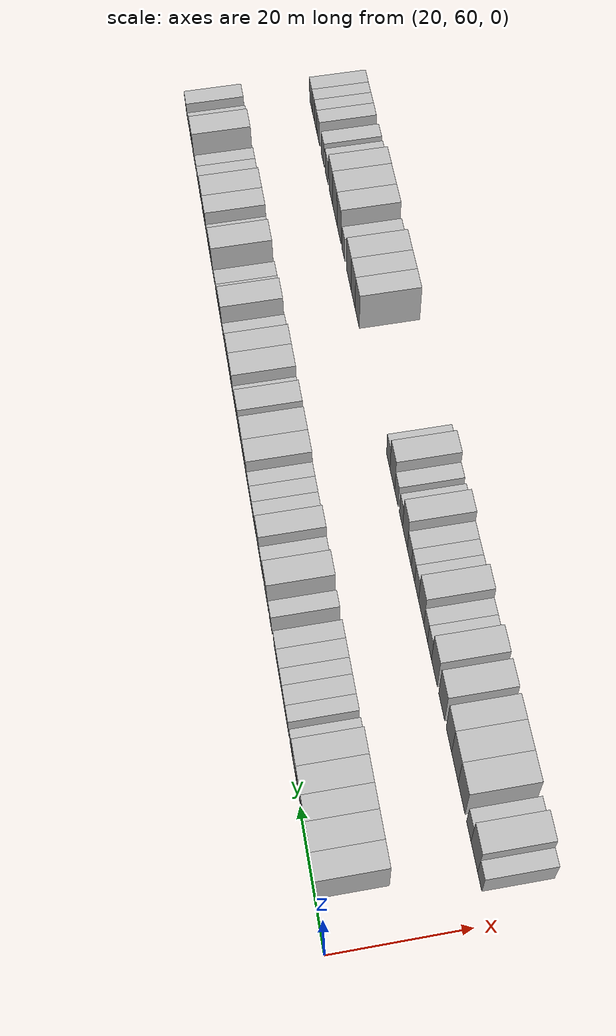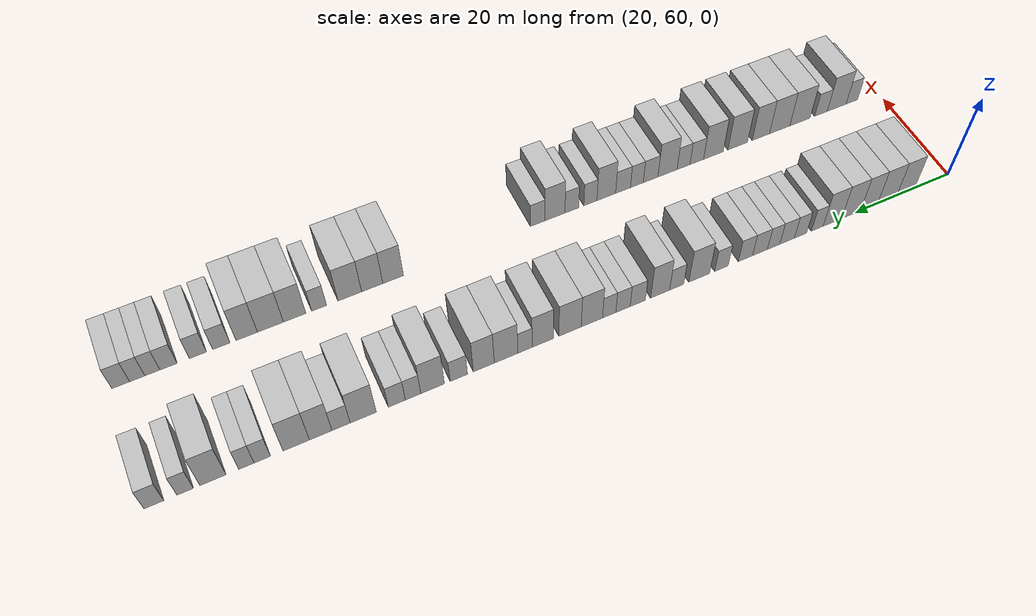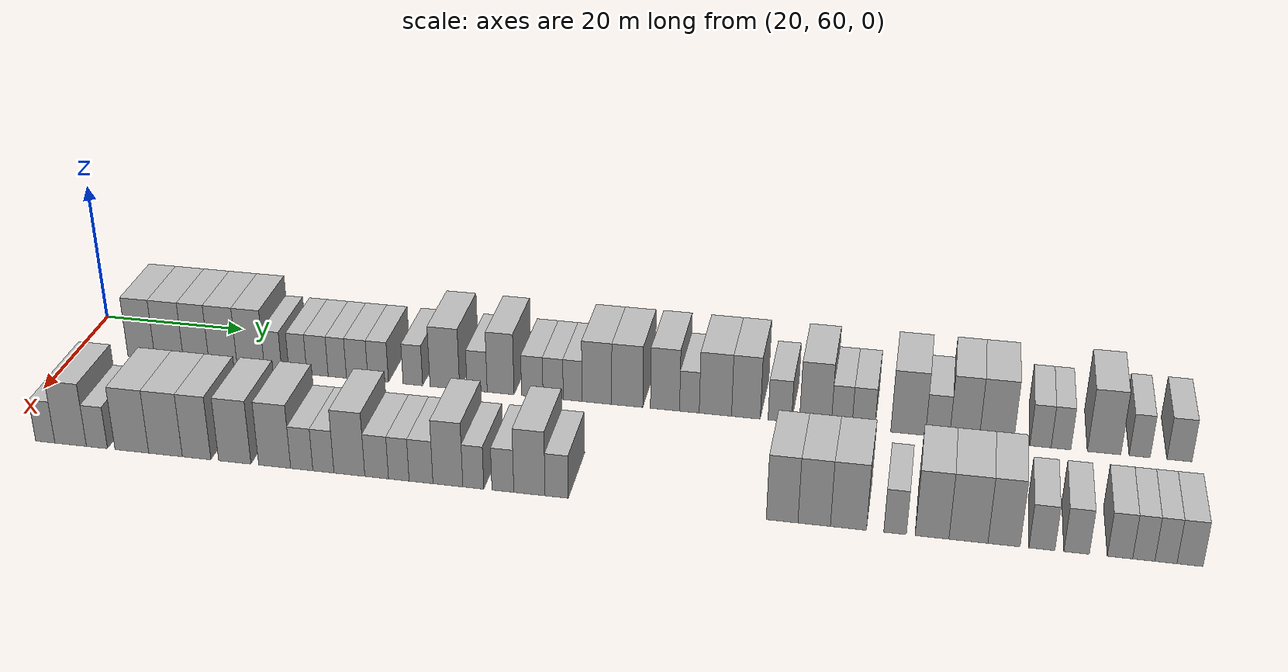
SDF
<sdf version="1.6">
 <world name="default">
  <model name="building_68">
   <static>1</static>
   <pose>25.0000 69.3000 0 0.000000 0.000000 0.000000</pose>
   <link name="link">
    <pose>0 0 4.50 0 0 0</pose>
    <collision name="collision"><geometry><box><size>10.0000 3.8514 9.0000</size></box></geometry></collision>
    <visual name="visual">
     <cast_shadows>0</cast_shadows>
     <geometry><box><size>10.0000 3.8514 9.0000</size></box></geometry>
     <material>
      <script>
       <uri>model://HANNAS_wall/materials/scripts</uri>
       <uri>model://HANNAS_wall/materials/textures</uri>
       <name>vrc/HANNAS_wall</name>
      </script>
     </material>
    </visual>
   </link>
  </model>
  <model name="building_69">
   <static>1</static>
   <pose>25.0000 73.2681 0 0.000000 0.000000 0.000000</pose>
   <link name="link">
    <pose>0 0 4.50 0 0 0</pose>
    <collision name="collision"><geometry><box><size>10.0000 4.0848 9.0000</size></box></geometry></collision>
    <visual name="visual">
     <cast_shadows>0</cast_shadows>
     <geometry><box><size>10.0000 4.0848 9.0000</size></box></geometry>
     <material>
      <script>
       <uri>model://HANNAS_wall/materials/scripts</uri>
       <uri>model://HANNAS_wall/materials/textures</uri>
       <name>vrc/HANNAS_wall</name>
      </script>
     </material>
    </visual>
   </link>
  </model>
  <model name="building_70">
   <static>1</static>
   <pose>25.0000 77.1204 0 0.000000 0.000000 0.000000</pose>
   <link name="link">
    <pose>0 0 4.50 0 0 0</pose>
    <collision name="collision"><geometry><box><size>10.0000 3.6198 9.0000</size></box></geometry></collision>
    <visual name="visual">
     <cast_shadows>0</cast_shadows>
     <geometry><box><size>10.0000 3.6198 9.0000</size></box></geometry>
     <material>
      <script>
       <uri>model://HANNAS_wall/materials/scripts</uri>
       <uri>model://HANNAS_wall/materials/textures</uri>
       <name>vrc/HANNAS_wall</name>
      </script>
     </material>
    </visual>
   </link>
  </model>
  <model name="building_71">
   <static>1</static>
   <pose>25.0000 80.9103 0 0.000000 0.000000 0.000000</pose>
   <link name="link">
    <pose>0 0 4.50 0 0 0</pose>
    <collision name="collision"><geometry><box><size>10.0000 3.9601 9.0000</size></box></geometry></collision>
    <visual name="visual">
     <cast_shadows>0</cast_shadows>
     <geometry><box><size>10.0000 3.9601 9.0000</size></box></geometry>
     <material>
      <script>
       <uri>model://HANNAS_wall/materials/scripts</uri>
       <uri>model://HANNAS_wall/materials/textures</uri>
       <name>vrc/HANNAS_wall</name>
      </script>
     </material>
    </visual>
   </link>
  </model>
  <model name="building_72">
   <static>1</static>
   <pose>25.0000 84.8086 0 0.000000 0.000000 0.000000</pose>
   <link name="link">
    <pose>0 0 4.50 0 0 0</pose>
    <collision name="collision"><geometry><box><size>10.0000 3.8365 9.0000</size></box></geometry></collision>
    <visual name="visual">
     <cast_shadows>0</cast_shadows>
     <geometry><box><size>10.0000 3.8365 9.0000</size></box></geometry>
     <material>
      <script>
       <uri>model://HANNAS_wall/materials/scripts</uri>
       <uri>model://HANNAS_wall/materials/textures</uri>
       <name>vrc/HANNAS_wall</name>
      </script>
     </material>
    </visual>
   </link>
  </model>
  <model name="building_73">
   <static>1</static>
   <pose>25.0000 87.9325 0 0.000000 0.000000 0.000000</pose>
   <link name="link">
    <pose>0 0 3.00 0 0 0</pose>
    <collision name="collision"><geometry><box><size>10.0000 2.4113 6.0000</size></box></geometry></collision>
    <visual name="visual">
     <cast_shadows>0</cast_shadows>
     <geometry><box><size>10.0000 2.4113 6.0000</size></box></geometry>
     <material>
      <script>
       <uri>model://HANNAS_wall/materials/scripts</uri>
       <uri>model://HANNAS_wall/materials/textures</uri>
       <name>vrc/HANNAS_wall</name>
      </script>
     </material>
    </visual>
   </link>
  </model>
  <model name="building_74">
   <static>1</static>
   <pose>25.0000 91.3737 0 0.000000 0.000000 0.000000</pose>
   <link name="link">
    <pose>0 0 3.00 0 0 0</pose>
    <collision name="collision"><geometry><box><size>10.0000 2.4710 6.0000</size></box></geometry></collision>
    <visual name="visual">
     <cast_shadows>0</cast_shadows>
     <geometry><box><size>10.0000 2.4710 6.0000</size></box></geometry>
     <material>
      <script>
       <uri>model://HANNAS_wall/materials/scripts</uri>
       <uri>model://HANNAS_wall/materials/textures</uri>
       <name>vrc/HANNAS_wall</name>
      </script>
     </material>
    </visual>
   </link>
  </model>
  <model name="building_75">
   <static>1</static>
   <pose>25.0000 94.0916 0 0.000000 0.000000 0.000000</pose>
   <link name="link">
    <pose>0 0 3.00 0 0 0</pose>
    <collision name="collision"><geometry><box><size>10.0000 2.9649 6.0000</size></box></geometry></collision>
    <visual name="visual">
     <cast_shadows>0</cast_shadows>
     <geometry><box><size>10.0000 2.9649 6.0000</size></box></geometry>
     <material>
      <script>
       <uri>model://HANNAS_wall/materials/scripts</uri>
       <uri>model://HANNAS_wall/materials/textures</uri>
       <name>vrc/HANNAS_wall</name>
      </script>
     </material>
    </visual>
   </link>
  </model>
  <model name="building_76">
   <static>1</static>
   <pose>25.0000 96.8340 0 0.000000 0.000000 0.000000</pose>
   <link name="link">
    <pose>0 0 3.00 0 0 0</pose>
    <collision name="collision"><geometry><box><size>10.0000 2.5198 6.0000</size></box></geometry></collision>
    <visual name="visual">
     <cast_shadows>0</cast_shadows>
     <geometry><box><size>10.0000 2.5198 6.0000</size></box></geometry>
     <material>
      <script>
       <uri>model://HANNAS_wall/materials/scripts</uri>
       <uri>model://HANNAS_wall/materials/textures</uri>
       <name>vrc/HANNAS_wall</name>
      </script>
     </material>
    </visual>
   </link>
  </model>
  <model name="building_77">
   <static>1</static>
   <pose>25.0000 99.5716 0 0.000000 0.000000 0.000000</pose>
   <link name="link">
    <pose>0 0 3.00 0 0 0</pose>
    <collision name="collision"><geometry><box><size>10.0000 2.9555 6.0000</size></box></geometry></collision>
    <visual name="visual">
     <cast_shadows>0</cast_shadows>
     <geometry><box><size>10.0000 2.9555 6.0000</size></box></geometry>
     <material>
      <script>
       <uri>model://HANNAS_wall/materials/scripts</uri>
       <uri>model://HANNAS_wall/materials/textures</uri>
       <name>vrc/HANNAS_wall</name>
      </script>
     </material>
    </visual>
   </link>
  </model>
  <model name="building_78">
   <static>1</static>
   <pose>25.0000 102.4579 0 0.000000 0.000000 0.000000</pose>
   <link name="link">
    <pose>0 0 3.00 0 0 0</pose>
    <collision name="collision"><geometry><box><size>10.0000 2.8170 6.0000</size></box></geometry></collision>
    <visual name="visual">
     <cast_shadows>0</cast_shadows>
     <geometry><box><size>10.0000 2.8170 6.0000</size></box></geometry>
     <material>
      <script>
       <uri>model://HANNAS_wall/materials/scripts</uri>
       <uri>model://HANNAS_wall/materials/textures</uri>
       <name>vrc/HANNAS_wall</name>
      </script>
     </material>
    </visual>
   </link>
  </model>
  <model name="building_79">
   <static>1</static>
   <pose>25.0000 107.1990 0 0.000000 0.000000 0.000000</pose>
   <link name="link">
    <pose>0 0 3.00 0 0 0</pose>
    <collision name="collision"><geometry><box><size>10.0000 2.6654 6.0000</size></box></geometry></collision>
    <visual name="visual">
     <cast_shadows>0</cast_shadows>
     <geometry><box><size>10.0000 2.6654 6.0000</size></box></geometry>
     <material>
      <script>
       <uri>model://HANNAS_wall/materials/scripts</uri>
       <uri>model://HANNAS_wall/materials/textures</uri>
       <name>vrc/HANNAS_wall</name>
      </script>
     </material>
    </visual>
   </link>
  </model>
  <model name="building_80">
   <static>1</static>
   <pose>25.0000 111.5384 0 0.000000 0.000000 0.000000</pose>
   <link name="link">
    <pose>0 0 4.50 0 0 0</pose>
    <collision name="collision"><geometry><box><size>10.0000 4.0134 9.0000</size></box></geometry></collision>
    <visual name="visual">
     <cast_shadows>0</cast_shadows>
     <geometry><box><size>10.0000 4.0134 9.0000</size></box></geometry>
     <material>
      <script>
       <uri>model://HANNAS_wall/materials/scripts</uri>
       <uri>model://HANNAS_wall/materials/textures</uri>
       <name>vrc/HANNAS_wall</name>
      </script>
     </material>
    </visual>
   </link>
  </model>
  <model name="building_81">
   <static>1</static>
   <pose>25.0000 115.9004 0 0.000000 0.000000 0.000000</pose>
   <link name="link">
    <pose>0 0 3.00 0 0 0</pose>
    <collision name="collision"><geometry><box><size>10.0000 2.7104 6.0000</size></box></geometry></collision>
    <visual name="visual">
     <cast_shadows>0</cast_shadows>
     <geometry><box><size>10.0000 2.7104 6.0000</size></box></geometry>
     <material>
      <script>
       <uri>model://HANNAS_wall/materials/scripts</uri>
       <uri>model://HANNAS_wall/materials/textures</uri>
       <name>vrc/HANNAS_wall</name>
      </script>
     </material>
    </visual>
   </link>
  </model>
  <model name="building_82">
   <static>1</static>
   <pose>25.0000 119.0612 0 0.000000 0.000000 0.000000</pose>
   <link name="link">
    <pose>0 0 4.50 0 0 0</pose>
    <collision name="collision"><geometry><box><size>10.0000 3.6113 9.0000</size></box></geometry></collision>
    <visual name="visual">
     <cast_shadows>0</cast_shadows>
     <geometry><box><size>10.0000 3.6113 9.0000</size></box></geometry>
     <material>
      <script>
       <uri>model://HANNAS_wall/materials/scripts</uri>
       <uri>model://HANNAS_wall/materials/textures</uri>
       <name>vrc/HANNAS_wall</name>
      </script>
     </material>
    </visual>
   </link>
  </model>
  <model name="building_83">
   <static>1</static>
   <pose>25.0000 123.2950 0 0.000000 0.000000 0.000000</pose>
   <link name="link">
    <pose>0 0 3.00 0 0 0</pose>
    <collision name="collision"><geometry><box><size>10.0000 2.8564 6.0000</size></box></geometry></collision>
    <visual name="visual">
     <cast_shadows>0</cast_shadows>
     <geometry><box><size>10.0000 2.8564 6.0000</size></box></geometry>
     <material>
      <script>
       <uri>model://HANNAS_wall/materials/scripts</uri>
       <uri>model://HANNAS_wall/materials/textures</uri>
       <name>vrc/HANNAS_wall</name>
      </script>
     </material>
    </visual>
   </link>
  </model>
  <model name="building_84">
   <static>1</static>
   <pose>25.0000 126.0651 0 0.000000 0.000000 0.000000</pose>
   <link name="link">
    <pose>0 0 3.00 0 0 0</pose>
    <collision name="collision"><geometry><box><size>10.0000 2.6837 6.0000</size></box></geometry></collision>
    <visual name="visual">
     <cast_shadows>0</cast_shadows>
     <geometry><box><size>10.0000 2.6837 6.0000</size></box></geometry>
     <material>
      <script>
       <uri>model://HANNAS_wall/materials/scripts</uri>
       <uri>model://HANNAS_wall/materials/textures</uri>
       <name>vrc/HANNAS_wall</name>
      </script>
     </material>
    </visual>
   </link>
  </model>
  <model name="building_85">
   <static>1</static>
   <pose>25.0000 128.6454 0 0.000000 0.000000 0.000000</pose>
   <link name="link">
    <pose>0 0 3.00 0 0 0</pose>
    <collision name="collision"><geometry><box><size>10.0000 2.4769 6.0000</size></box></geometry></collision>
    <visual name="visual">
     <cast_shadows>0</cast_shadows>
     <geometry><box><size>10.0000 2.4769 6.0000</size></box></geometry>
     <material>
      <script>
       <uri>model://HANNAS_wall/materials/scripts</uri>
       <uri>model://HANNAS_wall/materials/textures</uri>
       <name>vrc/HANNAS_wall</name>
      </script>
     </material>
    </visual>
   </link>
  </model>
  <model name="building_86">
   <static>1</static>
   <pose>25.0000 131.8472 0 0.000000 0.000000 0.000000</pose>
   <link name="link">
    <pose>0 0 4.50 0 0 0</pose>
    <collision name="collision"><geometry><box><size>10.0000 3.9269 9.0000</size></box></geometry></collision>
    <visual name="visual">
     <cast_shadows>0</cast_shadows>
     <geometry><box><size>10.0000 3.9269 9.0000</size></box></geometry>
     <material>
      <script>
       <uri>model://HANNAS_wall/materials/scripts</uri>
       <uri>model://HANNAS_wall/materials/textures</uri>
       <name>vrc/HANNAS_wall</name>
      </script>
     </material>
    </visual>
   </link>
  </model>
  <model name="building_87">
   <static>1</static>
   <pose>25.0000 135.8523 0 0.000000 0.000000 0.000000</pose>
   <link name="link">
    <pose>0 0 4.50 0 0 0</pose>
    <collision name="collision"><geometry><box><size>10.0000 4.0834 9.0000</size></box></geometry></collision>
    <visual name="visual">
     <cast_shadows>0</cast_shadows>
     <geometry><box><size>10.0000 4.0834 9.0000</size></box></geometry>
     <material>
      <script>
       <uri>model://HANNAS_wall/materials/scripts</uri>
       <uri>model://HANNAS_wall/materials/textures</uri>
       <name>vrc/HANNAS_wall</name>
      </script>
     </material>
    </visual>
   </link>
  </model>
  <model name="building_88">
   <static>1</static>
   <pose>25.0000 140.7905 0 0.000000 0.000000 0.000000</pose>
   <link name="link">
    <pose>0 0 4.50 0 0 0</pose>
    <collision name="collision"><geometry><box><size>10.0000 3.7930 9.0000</size></box></geometry></collision>
    <visual name="visual">
     <cast_shadows>0</cast_shadows>
     <geometry><box><size>10.0000 3.7930 9.0000</size></box></geometry>
     <material>
      <script>
       <uri>model://HANNAS_wall/materials/scripts</uri>
       <uri>model://HANNAS_wall/materials/textures</uri>
       <name>vrc/HANNAS_wall</name>
      </script>
     </material>
    </visual>
   </link>
  </model>
  <model name="building_89">
   <static>1</static>
   <pose>25.0000 143.9623 0 0.000000 0.000000 0.000000</pose>
   <link name="link">
    <pose>0 0 3.00 0 0 0</pose>
    <collision name="collision"><geometry><box><size>10.0000 2.5504 6.0000</size></box></geometry></collision>
    <visual name="visual">
     <cast_shadows>0</cast_shadows>
     <geometry><box><size>10.0000 2.5504 6.0000</size></box></geometry>
     <material>
      <script>
       <uri>model://HANNAS_wall/materials/scripts</uri>
       <uri>model://HANNAS_wall/materials/textures</uri>
       <name>vrc/HANNAS_wall</name>
      </script>
     </material>
    </visual>
   </link>
  </model>
  <model name="building_90">
   <static>1</static>
   <pose>25.0000 147.3286 0 0.000000 0.000000 0.000000</pose>
   <link name="link">
    <pose>0 0 4.50 0 0 0</pose>
    <collision name="collision"><geometry><box><size>10.0000 4.1822 9.0000</size></box></geometry></collision>
    <visual name="visual">
     <cast_shadows>0</cast_shadows>
     <geometry><box><size>10.0000 4.1822 9.0000</size></box></geometry>
     <material>
      <script>
       <uri>model://HANNAS_wall/materials/scripts</uri>
       <uri>model://HANNAS_wall/materials/textures</uri>
       <name>vrc/HANNAS_wall</name>
      </script>
     </material>
    </visual>
   </link>
  </model>
  <model name="building_91">
   <static>1</static>
   <pose>25.0000 151.2643 0 0.000000 0.000000 0.000000</pose>
   <link name="link">
    <pose>0 0 4.50 0 0 0</pose>
    <collision name="collision"><geometry><box><size>10.0000 3.6893 9.0000</size></box></geometry></collision>
    <visual name="visual">
     <cast_shadows>0</cast_shadows>
     <geometry><box><size>10.0000 3.6893 9.0000</size></box></geometry>
     <material>
      <script>
       <uri>model://HANNAS_wall/materials/scripts</uri>
       <uri>model://HANNAS_wall/materials/textures</uri>
       <name>vrc/HANNAS_wall</name>
      </script>
     </material>
    </visual>
   </link>
  </model>
  <model name="building_92">
   <static>1</static>
   <pose>25.0000 155.6082 0 0.000000 0.000000 0.000000</pose>
   <link name="link">
    <pose>0 0 3.00 0 0 0</pose>
    <collision name="collision"><geometry><box><size>10.0000 2.9984 6.0000</size></box></geometry></collision>
    <visual name="visual">
     <cast_shadows>0</cast_shadows>
     <geometry><box><size>10.0000 2.9984 6.0000</size></box></geometry>
     <material>
      <script>
       <uri>model://HANNAS_wall/materials/scripts</uri>
       <uri>model://HANNAS_wall/materials/textures</uri>
       <name>vrc/HANNAS_wall</name>
      </script>
     </material>
    </visual>
   </link>
  </model>
  <model name="building_93">
   <static>1</static>
   <pose>25.0000 160.1290 0 0.000000 0.000000 0.000000</pose>
   <link name="link">
    <pose>0 0 4.50 0 0 0</pose>
    <collision name="collision"><geometry><box><size>10.0000 4.0433 9.0000</size></box></geometry></collision>
    <visual name="visual">
     <cast_shadows>0</cast_shadows>
     <geometry><box><size>10.0000 4.0433 9.0000</size></box></geometry>
     <material>
      <script>
       <uri>model://HANNAS_wall/materials/scripts</uri>
       <uri>model://HANNAS_wall/materials/textures</uri>
       <name>vrc/HANNAS_wall</name>
      </script>
     </material>
    </visual>
   </link>
  </model>
  <model name="building_94">
   <static>1</static>
   <pose>25.0000 163.4590 0 0.000000 0.000000 0.000000</pose>
   <link name="link">
    <pose>0 0 3.00 0 0 0</pose>
    <collision name="collision"><geometry><box><size>10.0000 2.6165 6.0000</size></box></geometry></collision>
    <visual name="visual">
     <cast_shadows>0</cast_shadows>
     <geometry><box><size>10.0000 2.6165 6.0000</size></box></geometry>
     <material>
      <script>
       <uri>model://HANNAS_wall/materials/scripts</uri>
       <uri>model://HANNAS_wall/materials/textures</uri>
       <name>vrc/HANNAS_wall</name>
      </script>
     </material>
    </visual>
   </link>
  </model>
  <model name="building_95">
   <static>1</static>
   <pose>25.0000 166.2042 0 0.000000 0.000000 0.000000</pose>
   <link name="link">
    <pose>0 0 3.00 0 0 0</pose>
    <collision name="collision"><geometry><box><size>10.0000 2.8740 6.0000</size></box></geometry></collision>
    <visual name="visual">
     <cast_shadows>0</cast_shadows>
     <geometry><box><size>10.0000 2.8740 6.0000</size></box></geometry>
     <material>
      <script>
       <uri>model://HANNAS_wall/materials/scripts</uri>
       <uri>model://HANNAS_wall/materials/textures</uri>
       <name>vrc/HANNAS_wall</name>
      </script>
     </material>
    </visual>
   </link>
  </model>
  <model name="building_96">
   <static>1</static>
   <pose>25.0000 171.8117 0 0.000000 0.000000 0.000000</pose>
   <link name="link">
    <pose>0 0 4.50 0 0 0</pose>
    <collision name="collision"><geometry><box><size>10.0000 4.3411 9.0000</size></box></geometry></collision>
    <visual name="visual">
     <cast_shadows>0</cast_shadows>
     <geometry><box><size>10.0000 4.3411 9.0000</size></box></geometry>
     <material>
      <script>
       <uri>model://HANNAS_wall/materials/scripts</uri>
       <uri>model://HANNAS_wall/materials/textures</uri>
       <name>vrc/HANNAS_wall</name>
      </script>
     </material>
    </visual>
   </link>
  </model>
  <model name="building_97">
   <static>1</static>
   <pose>25.0000 175.4759 0 0.000000 0.000000 0.000000</pose>
   <link name="link">
    <pose>0 0 3.00 0 0 0</pose>
    <collision name="collision"><geometry><box><size>10.0000 2.9872 6.0000</size></box></geometry></collision>
    <visual name="visual">
     <cast_shadows>0</cast_shadows>
     <geometry><box><size>10.0000 2.9872 6.0000</size></box></geometry>
     <material>
      <script>
       <uri>model://HANNAS_wall/materials/scripts</uri>
       <uri>model://HANNAS_wall/materials/textures</uri>
       <name>vrc/HANNAS_wall</name>
      </script>
     </material>
    </visual>
   </link>
  </model>
  <model name="building_98">
   <static>1</static>
   <pose>25.0000 178.8049 0 0.000000 0.000000 0.000000</pose>
   <link name="link">
    <pose>0 0 4.50 0 0 0</pose>
    <collision name="collision"><geometry><box><size>10.0000 3.6708 9.0000</size></box></geometry></collision>
    <visual name="visual">
     <cast_shadows>0</cast_shadows>
     <geometry><box><size>10.0000 3.6708 9.0000</size></box></geometry>
     <material>
      <script>
       <uri>model://HANNAS_wall/materials/scripts</uri>
       <uri>model://HANNAS_wall/materials/textures</uri>
       <name>vrc/HANNAS_wall</name>
      </script>
     </material>
    </visual>
   </link>
  </model>
  <model name="building_99">
   <static>1</static>
   <pose>25.0000 182.7584 0 0.000000 0.000000 0.000000</pose>
   <link name="link">
    <pose>0 0 4.50 0 0 0</pose>
    <collision name="collision"><geometry><box><size>10.0000 4.2362 9.0000</size></box></geometry></collision>
    <visual name="visual">
     <cast_shadows>0</cast_shadows>
     <geometry><box><size>10.0000 4.2362 9.0000</size></box></geometry>
     <material>
      <script>
       <uri>model://HANNAS_wall/materials/scripts</uri>
       <uri>model://HANNAS_wall/materials/textures</uri>
       <name>vrc/HANNAS_wall</name>
      </script>
     </material>
    </visual>
   </link>
  </model>
  <model name="building_100">
   <static>1</static>
   <pose>25.0000 188.1758 0 0.000000 0.000000 0.000000</pose>
   <link name="link">
    <pose>0 0 3.00 0 0 0</pose>
    <collision name="collision"><geometry><box><size>10.0000 2.5985 6.0000</size></box></geometry></collision>
    <visual name="visual">
     <cast_shadows>0</cast_shadows>
     <geometry><box><size>10.0000 2.5985 6.0000</size></box></geometry>
     <material>
      <script>
       <uri>model://HANNAS_wall/materials/scripts</uri>
       <uri>model://HANNAS_wall/materials/textures</uri>
       <name>vrc/HANNAS_wall</name>
      </script>
     </material>
    </visual>
   </link>
  </model>
  <model name="building_101">
   <static>1</static>
   <pose>25.0000 190.6803 0 0.000000 0.000000 0.000000</pose>
   <link name="link">
    <pose>0 0 3.00 0 0 0</pose>
    <collision name="collision"><geometry><box><size>10.0000 2.4106 6.0000</size></box></geometry></collision>
    <visual name="visual">
     <cast_shadows>0</cast_shadows>
     <geometry><box><size>10.0000 2.4106 6.0000</size></box></geometry>
     <material>
      <script>
       <uri>model://HANNAS_wall/materials/scripts</uri>
       <uri>model://HANNAS_wall/materials/textures</uri>
       <name>vrc/HANNAS_wall</name>
      </script>
     </material>
    </visual>
   </link>
  </model>
  <model name="building_102">
   <static>1</static>
   <pose>25.0000 195.9119 0 0.000000 0.000000 0.000000</pose>
   <link name="link">
    <pose>0 0 4.50 0 0 0</pose>
    <collision name="collision"><geometry><box><size>10.0000 4.0526 9.0000</size></box></geometry></collision>
    <visual name="visual">
     <cast_shadows>0</cast_shadows>
     <geometry><box><size>10.0000 4.0526 9.0000</size></box></geometry>
     <material>
      <script>
       <uri>model://HANNAS_wall/materials/scripts</uri>
       <uri>model://HANNAS_wall/materials/textures</uri>
       <name>vrc/HANNAS_wall</name>
      </script>
     </material>
    </visual>
   </link>
  </model>
  <model name="building_103">
   <static>1</static>
   <pose>25.0000 200.2033 0 0.000000 0.000000 0.000000</pose>
   <link name="link">
    <pose>0 0 3.00 0 0 0</pose>
    <collision name="collision"><geometry><box><size>10.0000 2.5302 6.0000</size></box></geometry></collision>
    <visual name="visual">
     <cast_shadows>0</cast_shadows>
     <geometry><box><size>10.0000 2.5302 6.0000</size></box></geometry>
     <material>
      <script>
       <uri>model://HANNAS_wall/materials/scripts</uri>
       <uri>model://HANNAS_wall/materials/textures</uri>
       <name>vrc/HANNAS_wall</name>
      </script>
     </material>
    </visual>
   </link>
  </model>
  <model name="building_104">
   <static>1</static>
   <pose>25.0000 204.9650 0 0.000000 0.000000 0.000000</pose>
   <link name="link">
    <pose>0 0 3.00 0 0 0</pose>
    <collision name="collision"><geometry><box><size>10.0000 2.9931 6.0000</size></box></geometry></collision>
    <visual name="visual">
     <cast_shadows>0</cast_shadows>
     <geometry><box><size>10.0000 2.9931 6.0000</size></box></geometry>
     <material>
      <script>
       <uri>model://HANNAS_wall/materials/scripts</uri>
       <uri>model://HANNAS_wall/materials/textures</uri>
       <name>vrc/HANNAS_wall</name>
      </script>
     </material>
    </visual>
   </link>
  </model>
  <model name="building_175">
   <static>1</static>
   <pose>47.0000 65.7790 0 0.000000 0.000000 0.000000</pose>
   <link name="link">
    <pose>0 0 3.00 0 0 0</pose>
    <collision name="collision"><geometry><box><size>10.0000 2.5776 6.0000</size></box></geometry></collision>
    <visual name="visual">
     <cast_shadows>0</cast_shadows>
     <geometry><box><size>10.0000 2.5776 6.0000</size></box></geometry>
     <material>
      <script>
       <uri>model://HANNAS_wall/materials/scripts</uri>
       <uri>model://HANNAS_wall/materials/textures</uri>
       <name>vrc/HANNAS_wall</name>
      </script>
     </material>
    </visual>
   </link>
  </model>
  <model name="building_176">
   <static>1</static>
   <pose>47.0000 69.1729 0 0.000000 0.000000 0.000000</pose>
   <link name="link">
    <pose>0 0 4.50 0 0 0</pose>
    <collision name="collision"><geometry><box><size>10.0000 4.2102 9.0000</size></box></geometry></collision>
    <visual name="visual">
     <cast_shadows>0</cast_shadows>
     <geometry><box><size>10.0000 4.2102 9.0000</size></box></geometry>
     <material>
      <script>
       <uri>model://HANNAS_wall/materials/scripts</uri>
       <uri>model://HANNAS_wall/materials/textures</uri>
       <name>vrc/HANNAS_wall</name>
      </script>
     </material>
    </visual>
   </link>
  </model>
  <model name="building_177">
   <static>1</static>
   <pose>47.0000 72.6709 0 0.000000 0.000000 0.000000</pose>
   <link name="link">
    <pose>0 0 3.00 0 0 0</pose>
    <collision name="collision"><geometry><box><size>10.0000 2.7857 6.0000</size></box></geometry></collision>
    <visual name="visual">
     <cast_shadows>0</cast_shadows>
     <geometry><box><size>10.0000 2.7857 6.0000</size></box></geometry>
     <material>
      <script>
       <uri>model://HANNAS_wall/materials/scripts</uri>
       <uri>model://HANNAS_wall/materials/textures</uri>
       <name>vrc/HANNAS_wall</name>
      </script>
     </material>
    </visual>
   </link>
  </model>
  <model name="building_178">
   <static>1</static>
   <pose>47.0000 77.2899 0 0.000000 0.000000 0.000000</pose>
   <link name="link">
    <pose>0 0 4.50 0 0 0</pose>
    <collision name="collision"><geometry><box><size>10.0000 4.4523 9.0000</size></box></geometry></collision>
    <visual name="visual">
     <cast_shadows>0</cast_shadows>
     <geometry><box><size>10.0000 4.4523 9.0000</size></box></geometry>
     <material>
      <script>
       <uri>model://HANNAS_wall/materials/scripts</uri>
       <uri>model://HANNAS_wall/materials/textures</uri>
       <name>vrc/HANNAS_wall</name>
      </script>
     </material>
    </visual>
   </link>
  </model>
  <model name="building_179">
   <static>1</static>
   <pose>47.0000 81.7162 0 0.000000 0.000000 0.000000</pose>
   <link name="link">
    <pose>0 0 4.50 0 0 0</pose>
    <collision name="collision"><geometry><box><size>10.0000 4.4004 9.0000</size></box></geometry></collision>
    <visual name="visual">
     <cast_shadows>0</cast_shadows>
     <geometry><box><size>10.0000 4.4004 9.0000</size></box></geometry>
     <material>
      <script>
       <uri>model://HANNAS_wall/materials/scripts</uri>
       <uri>model://HANNAS_wall/materials/textures</uri>
       <name>vrc/HANNAS_wall</name>
      </script>
     </material>
    </visual>
   </link>
  </model>
  <model name="building_180">
   <static>1</static>
   <pose>47.0000 85.7802 0 0.000000 0.000000 0.000000</pose>
   <link name="link">
    <pose>0 0 4.50 0 0 0</pose>
    <collision name="collision"><geometry><box><size>10.0000 3.7275 9.0000</size></box></geometry></collision>
    <visual name="visual">
     <cast_shadows>0</cast_shadows>
     <geometry><box><size>10.0000 3.7275 9.0000</size></box></geometry>
     <material>
      <script>
       <uri>model://HANNAS_wall/materials/scripts</uri>
       <uri>model://HANNAS_wall/materials/textures</uri>
       <name>vrc/HANNAS_wall</name>
      </script>
     </material>
    </visual>
   </link>
  </model>
  <model name="building_181">
   <static>1</static>
   <pose>47.0000 90.7333 0 0.000000 0.000000 0.000000</pose>
   <link name="link">
    <pose>0 0 4.50 0 0 0</pose>
    <collision name="collision"><geometry><box><size>10.0000 4.1786 9.0000</size></box></geometry></collision>
    <visual name="visual">
     <cast_shadows>0</cast_shadows>
     <geometry><box><size>10.0000 4.1786 9.0000</size></box></geometry>
     <material>
      <script>
       <uri>model://HANNAS_wall/materials/scripts</uri>
       <uri>model://HANNAS_wall/materials/textures</uri>
       <name>vrc/HANNAS_wall</name>
      </script>
     </material>
    </visual>
   </link>
  </model>
  <model name="building_182">
   <static>1</static>
   <pose>47.0000 95.8786 0 0.000000 0.000000 0.000000</pose>
   <link name="link">
    <pose>0 0 4.50 0 0 0</pose>
    <collision name="collision"><geometry><box><size>10.0000 4.1121 9.0000</size></box></geometry></collision>
    <visual name="visual">
     <cast_shadows>0</cast_shadows>
     <geometry><box><size>10.0000 4.1121 9.0000</size></box></geometry>
     <material>
      <script>
       <uri>model://HANNAS_wall/materials/scripts</uri>
       <uri>model://HANNAS_wall/materials/textures</uri>
       <name>vrc/HANNAS_wall</name>
      </script>
     </material>
    </visual>
   </link>
  </model>
  <model name="building_183">
   <static>1</static>
   <pose>47.0000 99.3530 0 0.000000 0.000000 0.000000</pose>
   <link name="link">
    <pose>0 0 3.00 0 0 0</pose>
    <collision name="collision"><geometry><box><size>10.0000 2.8366 6.0000</size></box></geometry></collision>
    <visual name="visual">
     <cast_shadows>0</cast_shadows>
     <geometry><box><size>10.0000 2.8366 6.0000</size></box></geometry>
     <material>
      <script>
       <uri>model://HANNAS_wall/materials/scripts</uri>
       <uri>model://HANNAS_wall/materials/textures</uri>
       <name>vrc/HANNAS_wall</name>
      </script>
     </material>
    </visual>
   </link>
  </model>
  <model name="building_184">
   <static>1</static>
   <pose>47.0000 102.1115 0 0.000000 0.000000 0.000000</pose>
   <link name="link">
    <pose>0 0 3.00 0 0 0</pose>
    <collision name="collision"><geometry><box><size>10.0000 2.6804 6.0000</size></box></geometry></collision>
    <visual name="visual">
     <cast_shadows>0</cast_shadows>
     <geometry><box><size>10.0000 2.6804 6.0000</size></box></geometry>
     <material>
      <script>
       <uri>model://HANNAS_wall/materials/scripts</uri>
       <uri>model://HANNAS_wall/materials/textures</uri>
       <name>vrc/HANNAS_wall</name>
      </script>
     </material>
    </visual>
   </link>
  </model>
  <model name="building_185">
   <static>1</static>
   <pose>47.0000 105.4099 0 0.000000 0.000000 0.000000</pose>
   <link name="link">
    <pose>0 0 4.50 0 0 0</pose>
    <collision name="collision"><geometry><box><size>10.0000 3.9163 9.0000</size></box></geometry></collision>
    <visual name="visual">
     <cast_shadows>0</cast_shadows>
     <geometry><box><size>10.0000 3.9163 9.0000</size></box></geometry>
     <material>
      <script>
       <uri>model://HANNAS_wall/materials/scripts</uri>
       <uri>model://HANNAS_wall/materials/textures</uri>
       <name>vrc/HANNAS_wall</name>
      </script>
     </material>
    </visual>
   </link>
  </model>
  <model name="building_186">
   <static>1</static>
   <pose>47.0000 108.8617 0 0.000000 0.000000 0.000000</pose>
   <link name="link">
    <pose>0 0 3.00 0 0 0</pose>
    <collision name="collision"><geometry><box><size>10.0000 2.9874 6.0000</size></box></geometry></collision>
    <visual name="visual">
     <cast_shadows>0</cast_shadows>
     <geometry><box><size>10.0000 2.9874 6.0000</size></box></geometry>
     <material>
      <script>
       <uri>model://HANNAS_wall/materials/scripts</uri>
       <uri>model://HANNAS_wall/materials/textures</uri>
       <name>vrc/HANNAS_wall</name>
      </script>
     </material>
    </visual>
   </link>
  </model>
  <model name="building_187">
   <static>1</static>
   <pose>47.0000 111.6485 0 0.000000 0.000000 0.000000</pose>
   <link name="link">
    <pose>0 0 3.00 0 0 0</pose>
    <collision name="collision"><geometry><box><size>10.0000 2.5861 6.0000</size></box></geometry></collision>
    <visual name="visual">
     <cast_shadows>0</cast_shadows>
     <geometry><box><size>10.0000 2.5861 6.0000</size></box></geometry>
     <material>
      <script>
       <uri>model://HANNAS_wall/materials/scripts</uri>
       <uri>model://HANNAS_wall/materials/textures</uri>
       <name>vrc/HANNAS_wall</name>
      </script>
     </material>
    </visual>
   </link>
  </model>
  <model name="building_188">
   <static>1</static>
   <pose>47.0000 114.4340 0 0.000000 0.000000 0.000000</pose>
   <link name="link">
    <pose>0 0 3.00 0 0 0</pose>
    <collision name="collision"><geometry><box><size>10.0000 2.9850 6.0000</size></box></geometry></collision>
    <visual name="visual">
     <cast_shadows>0</cast_shadows>
     <geometry><box><size>10.0000 2.9850 6.0000</size></box></geometry>
     <material>
      <script>
       <uri>model://HANNAS_wall/materials/scripts</uri>
       <uri>model://HANNAS_wall/materials/textures</uri>
       <name>vrc/HANNAS_wall</name>
      </script>
     </material>
    </visual>
   </link>
  </model>
  <model name="building_189">
   <static>1</static>
   <pose>47.0000 117.7888 0 0.000000 0.000000 0.000000</pose>
   <link name="link">
    <pose>0 0 4.50 0 0 0</pose>
    <collision name="collision"><geometry><box><size>10.0000 3.7247 9.0000</size></box></geometry></collision>
    <visual name="visual">
     <cast_shadows>0</cast_shadows>
     <geometry><box><size>10.0000 3.7247 9.0000</size></box></geometry>
     <material>
      <script>
       <uri>model://HANNAS_wall/materials/scripts</uri>
       <uri>model://HANNAS_wall/materials/textures</uri>
       <name>vrc/HANNAS_wall</name>
      </script>
     </material>
    </visual>
   </link>
  </model>
  <model name="building_190">
   <static>1</static>
   <pose>47.0000 120.9493 0 0.000000 0.000000 0.000000</pose>
   <link name="link">
    <pose>0 0 3.00 0 0 0</pose>
    <collision name="collision"><geometry><box><size>10.0000 2.5964 6.0000</size></box></geometry></collision>
    <visual name="visual">
     <cast_shadows>0</cast_shadows>
     <geometry><box><size>10.0000 2.5964 6.0000</size></box></geometry>
     <material>
      <script>
       <uri>model://HANNAS_wall/materials/scripts</uri>
       <uri>model://HANNAS_wall/materials/textures</uri>
       <name>vrc/HANNAS_wall</name>
      </script>
     </material>
    </visual>
   </link>
  </model>
  <model name="building_191">
   <static>1</static>
   <pose>47.0000 124.5965 0 0.000000 0.000000 0.000000</pose>
   <link name="link">
    <pose>0 0 3.00 0 0 0</pose>
    <collision name="collision"><geometry><box><size>10.0000 2.6981 6.0000</size></box></geometry></collision>
    <visual name="visual">
     <cast_shadows>0</cast_shadows>
     <geometry><box><size>10.0000 2.6981 6.0000</size></box></geometry>
     <material>
      <script>
       <uri>model://HANNAS_wall/materials/scripts</uri>
       <uri>model://HANNAS_wall/materials/textures</uri>
       <name>vrc/HANNAS_wall</name>
      </script>
     </material>
    </visual>
   </link>
  </model>
  <model name="building_192">
   <static>1</static>
   <pose>47.0000 127.8670 0 0.000000 0.000000 0.000000</pose>
   <link name="link">
    <pose>0 0 4.50 0 0 0</pose>
    <collision name="collision"><geometry><box><size>10.0000 3.8428 9.0000</size></box></geometry></collision>
    <visual name="visual">
     <cast_shadows>0</cast_shadows>
     <geometry><box><size>10.0000 3.8428 9.0000</size></box></geometry>
     <material>
      <script>
       <uri>model://HANNAS_wall/materials/scripts</uri>
       <uri>model://HANNAS_wall/materials/textures</uri>
       <name>vrc/HANNAS_wall</name>
      </script>
     </material>
    </visual>
   </link>
  </model>
  <model name="building_193">
   <static>1</static>
   <pose>47.0000 131.2087 0 0.000000 0.000000 0.000000</pose>
   <link name="link">
    <pose>0 0 3.00 0 0 0</pose>
    <collision name="collision"><geometry><box><size>10.0000 2.8406 6.0000</size></box></geometry></collision>
    <visual name="visual">
     <cast_shadows>0</cast_shadows>
     <geometry><box><size>10.0000 2.8406 6.0000</size></box></geometry>
     <material>
      <script>
       <uri>model://HANNAS_wall/materials/scripts</uri>
       <uri>model://HANNAS_wall/materials/textures</uri>
       <name>vrc/HANNAS_wall</name>
      </script>
     </material>
    </visual>
   </link>
  </model>
  <model name="building_194">
   <static>1</static>
   <pose>47.0000 158.2020 0 0.000000 0.000000 0.000000</pose>
   <link name="link">
    <pose>0 0 4.50 0 0 0</pose>
    <collision name="collision"><geometry><box><size>10.0000 3.7154 9.0000</size></box></geometry></collision>
    <visual name="visual">
     <cast_shadows>0</cast_shadows>
     <geometry><box><size>10.0000 3.7154 9.0000</size></box></geometry>
     <material>
      <script>
       <uri>model://HANNAS_wall/materials/scripts</uri>
       <uri>model://HANNAS_wall/materials/textures</uri>
       <name>vrc/HANNAS_wall</name>
      </script>
     </material>
    </visual>
   </link>
  </model>
  <model name="building_195">
   <static>1</static>
   <pose>47.0000 161.9561 0 0.000000 0.000000 0.000000</pose>
   <link name="link">
    <pose>0 0 4.50 0 0 0</pose>
    <collision name="collision"><geometry><box><size>10.0000 3.7928 9.0000</size></box></geometry></collision>
    <visual name="visual">
     <cast_shadows>0</cast_shadows>
     <geometry><box><size>10.0000 3.7928 9.0000</size></box></geometry>
     <material>
      <script>
       <uri>model://HANNAS_wall/materials/scripts</uri>
       <uri>model://HANNAS_wall/materials/textures</uri>
       <name>vrc/HANNAS_wall</name>
      </script>
     </material>
    </visual>
   </link>
  </model>
  <model name="building_196">
   <static>1</static>
   <pose>47.0000 165.9478 0 0.000000 0.000000 0.000000</pose>
   <link name="link">
    <pose>0 0 4.50 0 0 0</pose>
    <collision name="collision"><geometry><box><size>10.0000 4.1906 9.0000</size></box></geometry></collision>
    <visual name="visual">
     <cast_shadows>0</cast_shadows>
     <geometry><box><size>10.0000 4.1906 9.0000</size></box></geometry>
     <material>
      <script>
       <uri>model://HANNAS_wall/materials/scripts</uri>
       <uri>model://HANNAS_wall/materials/textures</uri>
       <name>vrc/HANNAS_wall</name>
      </script>
     </material>
    </visual>
   </link>
  </model>
  <model name="building_197">
   <static>1</static>
   <pose>47.0000 171.3467 0 0.000000 0.000000 0.000000</pose>
   <link name="link">
    <pose>0 0 3.00 0 0 0</pose>
    <collision name="collision"><geometry><box><size>10.0000 2.6072 6.0000</size></box></geometry></collision>
    <visual name="visual">
     <cast_shadows>0</cast_shadows>
     <geometry><box><size>10.0000 2.6072 6.0000</size></box></geometry>
     <material>
      <script>
       <uri>model://HANNAS_wall/materials/scripts</uri>
       <uri>model://HANNAS_wall/materials/textures</uri>
       <name>vrc/HANNAS_wall</name>
      </script>
     </material>
    </visual>
   </link>
  </model>
  <model name="building_198">
   <static>1</static>
   <pose>47.0000 175.5838 0 0.000000 0.000000 0.000000</pose>
   <link name="link">
    <pose>0 0 4.50 0 0 0</pose>
    <collision name="collision"><geometry><box><size>10.0000 3.8671 9.0000</size></box></geometry></collision>
    <visual name="visual">
     <cast_shadows>0</cast_shadows>
     <geometry><box><size>10.0000 3.8671 9.0000</size></box></geometry>
     <material>
      <script>
       <uri>model://HANNAS_wall/materials/scripts</uri>
       <uri>model://HANNAS_wall/materials/textures</uri>
       <name>vrc/HANNAS_wall</name>
      </script>
     </material>
    </visual>
   </link>
  </model>
  <model name="building_199">
   <static>1</static>
   <pose>47.0000 179.7385 0 0.000000 0.000000 0.000000</pose>
   <link name="link">
    <pose>0 0 4.50 0 0 0</pose>
    <collision name="collision"><geometry><box><size>10.0000 4.4423 9.0000</size></box></geometry></collision>
    <visual name="visual">
     <cast_shadows>0</cast_shadows>
     <geometry><box><size>10.0000 4.4423 9.0000</size></box></geometry>
     <material>
      <script>
       <uri>model://HANNAS_wall/materials/scripts</uri>
       <uri>model://HANNAS_wall/materials/textures</uri>
       <name>vrc/HANNAS_wall</name>
      </script>
     </material>
    </visual>
   </link>
  </model>
  <model name="building_200">
   <static>1</static>
   <pose>47.0000 183.7777 0 0.000000 0.000000 0.000000</pose>
   <link name="link">
    <pose>0 0 4.50 0 0 0</pose>
    <collision name="collision"><geometry><box><size>10.0000 3.6361 9.0000</size></box></geometry></collision>
    <visual name="visual">
     <cast_shadows>0</cast_shadows>
     <geometry><box><size>10.0000 3.6361 9.0000</size></box></geometry>
     <material>
      <script>
       <uri>model://HANNAS_wall/materials/scripts</uri>
       <uri>model://HANNAS_wall/materials/textures</uri>
       <name>vrc/HANNAS_wall</name>
      </script>
     </material>
    </visual>
   </link>
  </model>
  <model name="building_201">
   <static>1</static>
   <pose>47.0000 188.0532 0 0.000000 0.000000 0.000000</pose>
   <link name="link">
    <pose>0 0 3.00 0 0 0</pose>
    <collision name="collision"><geometry><box><size>10.0000 2.9150 6.0000</size></box></geometry></collision>
    <visual name="visual">
     <cast_shadows>0</cast_shadows>
     <geometry><box><size>10.0000 2.9150 6.0000</size></box></geometry>
     <material>
      <script>
       <uri>model://HANNAS_wall/materials/scripts</uri>
       <uri>model://HANNAS_wall/materials/textures</uri>
       <name>vrc/HANNAS_wall</name>
      </script>
     </material>
    </visual>
   </link>
  </model>
  <model name="building_202">
   <static>1</static>
   <pose>47.0000 191.9359 0 0.000000 0.000000 0.000000</pose>
   <link name="link">
    <pose>0 0 3.00 0 0 0</pose>
    <collision name="collision"><geometry><box><size>10.0000 2.8503 6.0000</size></box></geometry></collision>
    <visual name="visual">
     <cast_shadows>0</cast_shadows>
     <geometry><box><size>10.0000 2.8503 6.0000</size></box></geometry>
     <material>
      <script>
       <uri>model://HANNAS_wall/materials/scripts</uri>
       <uri>model://HANNAS_wall/materials/textures</uri>
       <name>vrc/HANNAS_wall</name>
      </script>
     </material>
    </visual>
   </link>
  </model>
  <model name="building_203">
   <static>1</static>
   <pose>47.0000 196.7650 0 0.000000 0.000000 0.000000</pose>
   <link name="link">
    <pose>0 0 3.00 0 0 0</pose>
    <collision name="collision"><geometry><box><size>10.0000 2.8078 6.0000</size></box></geometry></collision>
    <visual name="visual">
     <cast_shadows>0</cast_shadows>
     <geometry><box><size>10.0000 2.8078 6.0000</size></box></geometry>
     <material>
      <script>
       <uri>model://HANNAS_wall/materials/scripts</uri>
       <uri>model://HANNAS_wall/materials/textures</uri>
       <name>vrc/HANNAS_wall</name>
      </script>
     </material>
    </visual>
   </link>
  </model>
  <model name="building_204">
   <static>1</static>
   <pose>47.0000 199.3935 0 0.000000 0.000000 0.000000</pose>
   <link name="link">
    <pose>0 0 3.00 0 0 0</pose>
    <collision name="collision"><geometry><box><size>10.0000 2.4492 6.0000</size></box></geometry></collision>
    <visual name="visual">
     <cast_shadows>0</cast_shadows>
     <geometry><box><size>10.0000 2.4492 6.0000</size></box></geometry>
     <material>
      <script>
       <uri>model://HANNAS_wall/materials/scripts</uri>
       <uri>model://HANNAS_wall/materials/textures</uri>
       <name>vrc/HANNAS_wall</name>
      </script>
     </material>
    </visual>
   </link>
  </model>
  <model name="building_205">
   <static>1</static>
   <pose>47.0000 201.8372 0 0.000000 0.000000 0.000000</pose>
   <link name="link">
    <pose>0 0 3.00 0 0 0</pose>
    <collision name="collision"><geometry><box><size>10.0000 2.4381 6.0000</size></box></geometry></collision>
    <visual name="visual">
     <cast_shadows>0</cast_shadows>
     <geometry><box><size>10.0000 2.4381 6.0000</size></box></geometry>
     <material>
      <script>
       <uri>model://HANNAS_wall/materials/scripts</uri>
       <uri>model://HANNAS_wall/materials/textures</uri>
       <name>vrc/HANNAS_wall</name>
      </script>
     </material>
    </visual>
   </link>
  </model>
  <model name="building_206">
   <static>1</static>
   <pose>47.0000 204.4885 0 0.000000 0.000000 0.000000</pose>
   <link name="link">
    <pose>0 0 3.00 0 0 0</pose>
    <collision name="collision"><geometry><box><size>10.0000 2.8646 6.0000</size></box></geometry></collision>
    <visual name="visual">
     <cast_shadows>0</cast_shadows>
     <geometry><box><size>10.0000 2.8646 6.0000</size></box></geometry>
     <material>
      <script>
       <uri>model://HANNAS_wall/materials/scripts</uri>
       <uri>model://HANNAS_wall/materials/textures</uri>
       <name>vrc/HANNAS_wall</name>
      </script>
     </material>
    </visual>
   </link>
  </model>
 </world>
</sdf>
